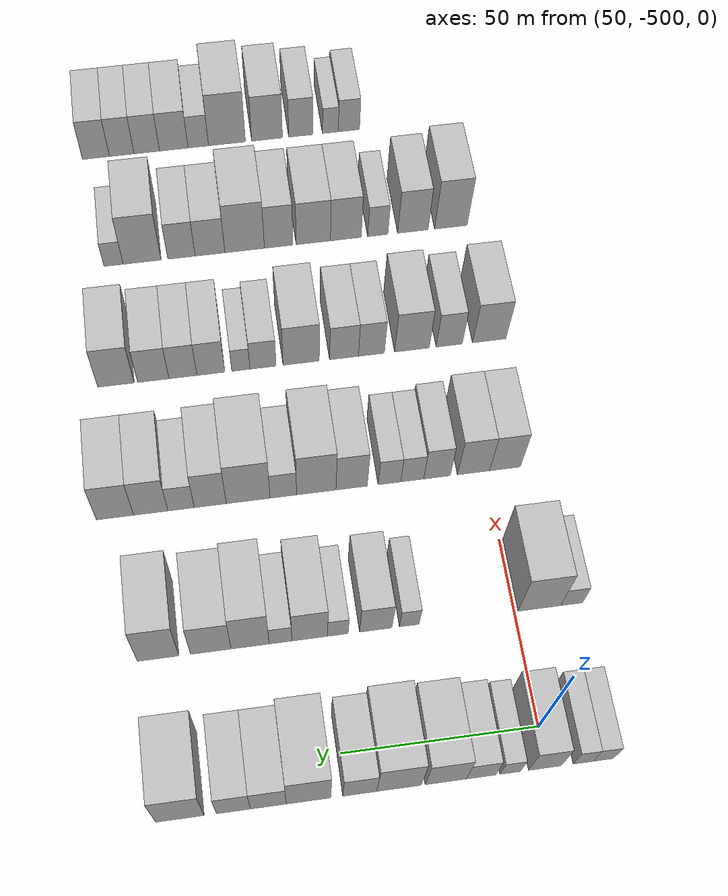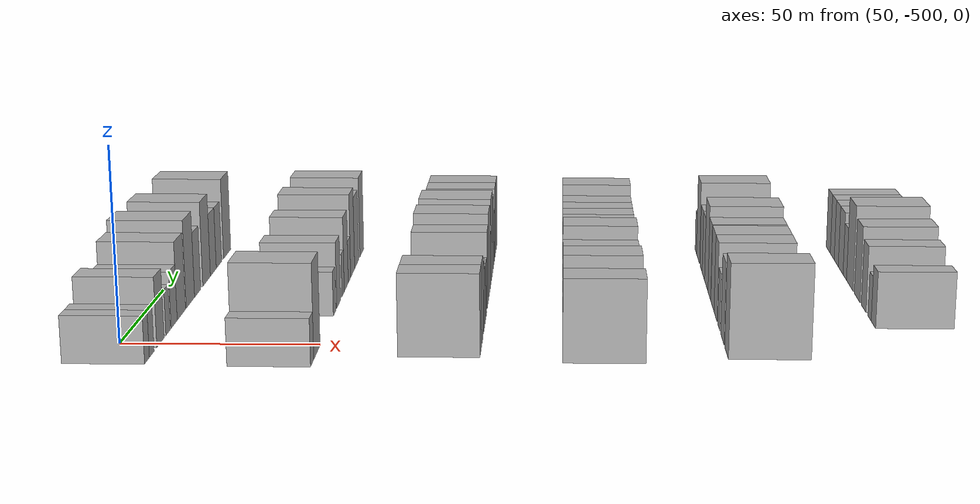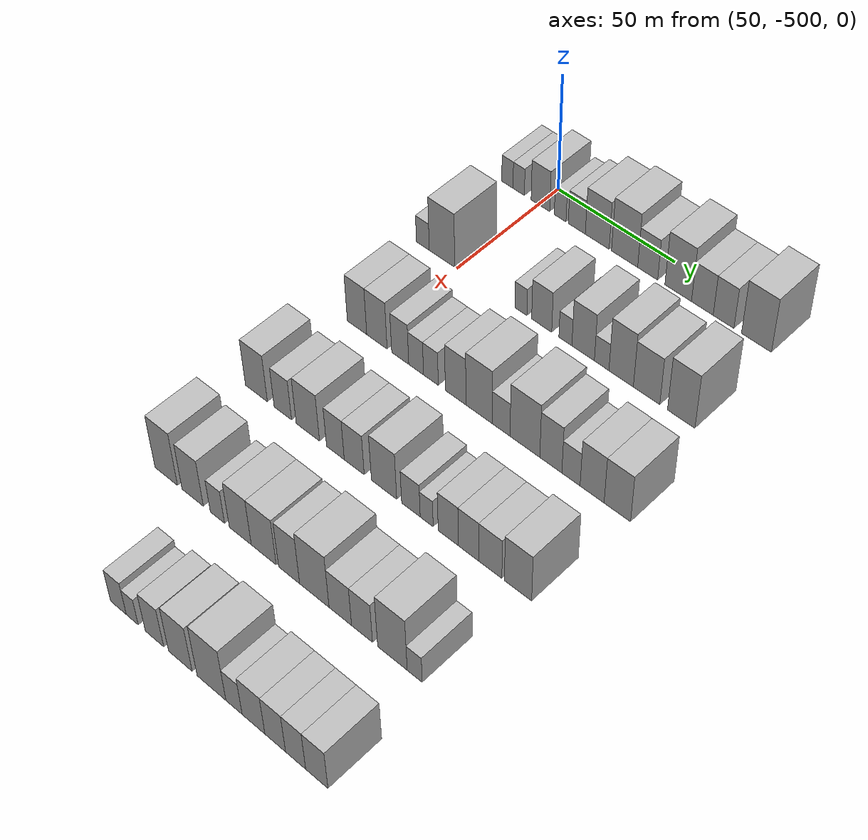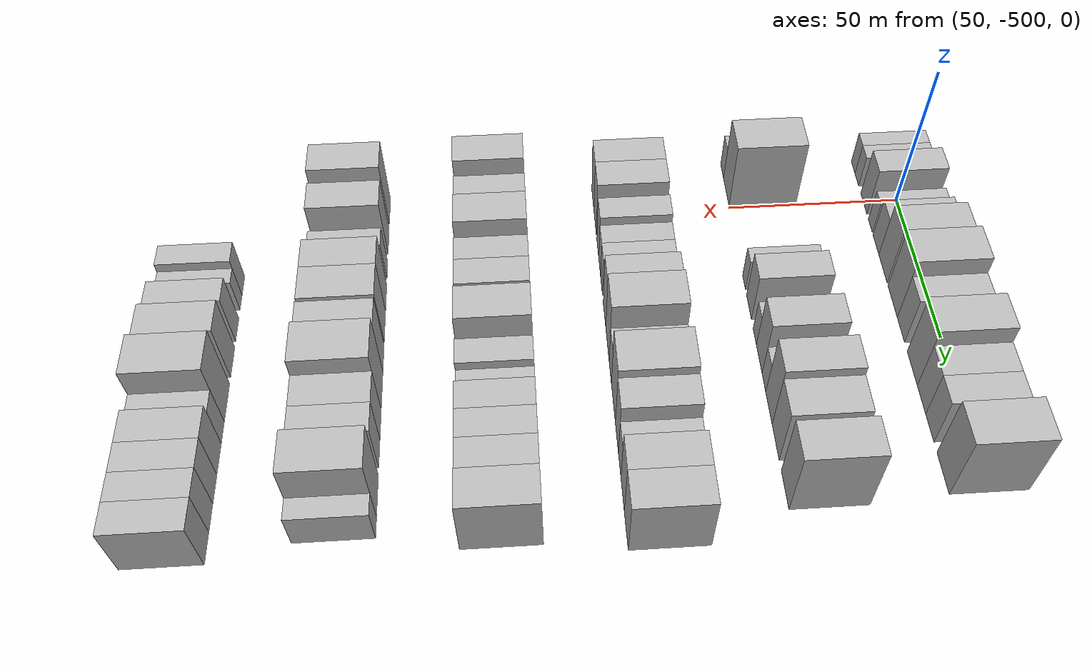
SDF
<sdf version="1.6">
 <world name="default">
  <model name="building_12">
   <static>1</static>
   <pose>50.0000 -514.1275 0 0.000000 0.000000 0.000000</pose>
   <link name="link">
    <pose>0 0 6.00 0 0 0</pose>
    <collision name="collision"><geometry><box><size>20.0000 5.0837 12.0000</size></box></geometry></collision>
    <visual name="visual">
     <cast_shadows>0</cast_shadows>
     <geometry><box><size>20.0000 5.0837 12.0000</size></box></geometry>
     <material>
      <script>
       <uri>model://HANNAS_wall/materials/scripts</uri>
       <uri>model://HANNAS_wall/materials/textures</uri>
       <name>vrc/HANNAS_wall</name>
      </script>
     </material>
    </visual>
   </link>
  </model>
  <model name="building_13">
   <static>1</static>
   <pose>50.0000 -509.0317 0 0.000000 0.000000 0.000000</pose>
   <link name="link">
    <pose>0 0 6.00 0 0 0</pose>
    <collision name="collision"><geometry><box><size>20.0000 5.1077 12.0000</size></box></geometry></collision>
    <visual name="visual">
     <cast_shadows>0</cast_shadows>
     <geometry><box><size>20.0000 5.1077 12.0000</size></box></geometry>
     <material>
      <script>
       <uri>model://HANNAS_wall/materials/scripts</uri>
       <uri>model://HANNAS_wall/materials/textures</uri>
       <name>vrc/HANNAS_wall</name>
      </script>
     </material>
    </visual>
   </link>
  </model>
  <model name="building_14">
   <static>1</static>
   <pose>50.0000 -499.3584 0 0.000000 0.000000 0.000000</pose>
   <link name="link">
    <pose>0 0 9.00 0 0 0</pose>
    <collision name="collision"><geometry><box><size>20.0000 8.2390 18.0000</size></box></geometry></collision>
    <visual name="visual">
     <cast_shadows>0</cast_shadows>
     <geometry><box><size>20.0000 8.2390 18.0000</size></box></geometry>
     <material>
      <script>
       <uri>model://HANNAS_wall/materials/scripts</uri>
       <uri>model://HANNAS_wall/materials/textures</uri>
       <name>vrc/HANNAS_wall</name>
      </script>
     </material>
    </visual>
   </link>
  </model>
  <model name="building_15">
   <static>1</static>
   <pose>50.0000 -490.6600 0 0.000000 0.000000 0.000000</pose>
   <link name="link">
    <pose>0 0 6.00 0 0 0</pose>
    <collision name="collision"><geometry><box><size>20.0000 5.1577 12.0000</size></box></geometry></collision>
    <visual name="visual">
     <cast_shadows>0</cast_shadows>
     <geometry><box><size>20.0000 5.1577 12.0000</size></box></geometry>
     <material>
      <script>
       <uri>model://HANNAS_wall/materials/scripts</uri>
       <uri>model://HANNAS_wall/materials/textures</uri>
       <name>vrc/HANNAS_wall</name>
      </script>
     </material>
    </visual>
   </link>
  </model>
  <model name="building_16">
   <static>1</static>
   <pose>50.0000 -483.3832 0 0.000000 0.000000 0.000000</pose>
   <link name="link">
    <pose>0 0 7.50 0 0 0</pose>
    <collision name="collision"><geometry><box><size>20.0000 7.3959 15.0000</size></box></geometry></collision>
    <visual name="visual">
     <cast_shadows>0</cast_shadows>
     <geometry><box><size>20.0000 7.3959 15.0000</size></box></geometry>
     <material>
      <script>
       <uri>model://HANNAS_wall/materials/scripts</uri>
       <uri>model://HANNAS_wall/materials/textures</uri>
       <name>vrc/HANNAS_wall</name>
      </script>
     </material>
    </visual>
   </link>
  </model>
  <model name="building_17">
   <static>1</static>
   <pose>50.0000 -474.5680 0 0.000000 0.000000 0.000000</pose>
   <link name="link">
    <pose>0 0 10.50 0 0 0</pose>
    <collision name="collision"><geometry><box><size>20.0000 10.2346 21.0000</size></box></geometry></collision>
    <visual name="visual">
     <cast_shadows>0</cast_shadows>
     <geometry><box><size>20.0000 10.2346 21.0000</size></box></geometry>
     <material>
      <script>
       <uri>model://HANNAS_wall/materials/scripts</uri>
       <uri>model://HANNAS_wall/materials/textures</uri>
       <name>vrc/HANNAS_wall</name>
      </script>
     </material>
    </visual>
   </link>
  </model>
  <model name="building_18">
   <static>1</static>
   <pose>50.0000 -462.9156 0 0.000000 0.000000 0.000000</pose>
   <link name="link">
    <pose>0 0 12.00 0 0 0</pose>
    <collision name="collision"><geometry><box><size>20.0000 11.0701 24.0000</size></box></geometry></collision>
    <visual name="visual">
     <cast_shadows>0</cast_shadows>
     <geometry><box><size>20.0000 11.0701 24.0000</size></box></geometry>
     <material>
      <script>
       <uri>model://HANNAS_wall/materials/scripts</uri>
       <uri>model://HANNAS_wall/materials/textures</uri>
       <name>vrc/HANNAS_wall</name>
      </script>
     </material>
    </visual>
   </link>
  </model>
  <model name="building_19">
   <static>1</static>
   <pose>50.0000 -453.2186 0 0.000000 0.000000 0.000000</pose>
   <link name="link">
    <pose>0 0 9.00 0 0 0</pose>
    <collision name="collision"><geometry><box><size>20.0000 8.3239 18.0000</size></box></geometry></collision>
    <visual name="visual">
     <cast_shadows>0</cast_shadows>
     <geometry><box><size>20.0000 8.3239 18.0000</size></box></geometry>
     <material>
      <script>
       <uri>model://HANNAS_wall/materials/scripts</uri>
       <uri>model://HANNAS_wall/materials/textures</uri>
       <name>vrc/HANNAS_wall</name>
      </script>
     </material>
    </visual>
   </link>
  </model>
  <model name="building_20">
   <static>1</static>
   <pose>50.0000 -440.6181 0 0.000000 0.000000 0.000000</pose>
   <link name="link">
    <pose>0 0 12.00 0 0 0</pose>
    <collision name="collision"><geometry><box><size>20.0000 10.8770 24.0000</size></box></geometry></collision>
    <visual name="visual">
     <cast_shadows>0</cast_shadows>
     <geometry><box><size>20.0000 10.8770 24.0000</size></box></geometry>
     <material>
      <script>
       <uri>model://HANNAS_wall/materials/scripts</uri>
       <uri>model://HANNAS_wall/materials/textures</uri>
       <name>vrc/HANNAS_wall</name>
      </script>
     </material>
    </visual>
   </link>
  </model>
  <model name="building_21">
   <static>1</static>
   <pose>50.0000 -430.7888 0 0.000000 0.000000 0.000000</pose>
   <link name="link">
    <pose>0 0 9.00 0 0 0</pose>
    <collision name="collision"><geometry><box><size>20.0000 8.7816 18.0000</size></box></geometry></collision>
    <visual name="visual">
     <cast_shadows>0</cast_shadows>
     <geometry><box><size>20.0000 8.7816 18.0000</size></box></geometry>
     <material>
      <script>
       <uri>model://HANNAS_wall/materials/scripts</uri>
       <uri>model://HANNAS_wall/materials/textures</uri>
       <name>vrc/HANNAS_wall</name>
      </script>
     </material>
    </visual>
   </link>
  </model>
  <model name="building_22">
   <static>1</static>
   <pose>50.0000 -422.2587 0 0.000000 0.000000 0.000000</pose>
   <link name="link">
    <pose>0 0 9.00 0 0 0</pose>
    <collision name="collision"><geometry><box><size>20.0000 8.2787 18.0000</size></box></geometry></collision>
    <visual name="visual">
     <cast_shadows>0</cast_shadows>
     <geometry><box><size>20.0000 8.2787 18.0000</size></box></geometry>
     <material>
      <script>
       <uri>model://HANNAS_wall/materials/scripts</uri>
       <uri>model://HANNAS_wall/materials/textures</uri>
       <name>vrc/HANNAS_wall</name>
      </script>
     </material>
    </visual>
   </link>
  </model>
  <model name="building_23">
   <static>1</static>
   <pose>50.0000 -409.2521 0 0.000000 0.000000 0.000000</pose>
   <link name="link">
    <pose>0 0 12.00 0 0 0</pose>
    <collision name="collision"><geometry><box><size>20.0000 11.7345 24.0000</size></box></geometry></collision>
    <visual name="visual">
     <cast_shadows>0</cast_shadows>
     <geometry><box><size>20.0000 11.7345 24.0000</size></box></geometry>
     <material>
      <script>
       <uri>model://HANNAS_wall/materials/scripts</uri>
       <uri>model://HANNAS_wall/materials/textures</uri>
       <name>vrc/HANNAS_wall</name>
      </script>
     </material>
    </visual>
   </link>
  </model>
  <model name="building_143">
   <static>1</static>
   <pose>90.0000 -515.1799 0 0.000000 0.000000 0.000000</pose>
   <link name="link">
    <pose>0 0 6.00 0 0 0</pose>
    <collision name="collision"><geometry><box><size>20.0000 5.7935 12.0000</size></box></geometry></collision>
    <visual name="visual">
     <cast_shadows>0</cast_shadows>
     <geometry><box><size>20.0000 5.7935 12.0000</size></box></geometry>
     <material>
      <script>
       <uri>model://HANNAS_wall/materials/scripts</uri>
       <uri>model://HANNAS_wall/materials/textures</uri>
       <name>vrc/HANNAS_wall</name>
      </script>
     </material>
    </visual>
   </link>
  </model>
  <model name="building_144">
   <static>1</static>
   <pose>90.0000 -506.5988 0 0.000000 0.000000 0.000000</pose>
   <link name="link">
    <pose>0 0 12.00 0 0 0</pose>
    <collision name="collision"><geometry><box><size>20.0000 11.3687 24.0000</size></box></geometry></collision>
    <visual name="visual">
     <cast_shadows>0</cast_shadows>
     <geometry><box><size>20.0000 11.3687 24.0000</size></box></geometry>
     <material>
      <script>
       <uri>model://HANNAS_wall/materials/scripts</uri>
       <uri>model://HANNAS_wall/materials/textures</uri>
       <name>vrc/HANNAS_wall</name>
      </script>
     </material>
    </visual>
   </link>
  </model>
  <model name="building_145">
   <static>1</static>
   <pose>90.0000 -472.2191 0 0.000000 0.000000 0.000000</pose>
   <link name="link">
    <pose>0 0 6.00 0 0 0</pose>
    <collision name="collision"><geometry><box><size>20.0000 5.1303 12.0000</size></box></geometry></collision>
    <visual name="visual">
     <cast_shadows>0</cast_shadows>
     <geometry><box><size>20.0000 5.1303 12.0000</size></box></geometry>
     <material>
      <script>
       <uri>model://HANNAS_wall/materials/scripts</uri>
       <uri>model://HANNAS_wall/materials/textures</uri>
       <name>vrc/HANNAS_wall</name>
      </script>
     </material>
    </visual>
   </link>
  </model>
  <model name="building_146">
   <static>1</static>
   <pose>90.0000 -463.4423 0 0.000000 0.000000 0.000000</pose>
   <link name="link">
    <pose>0 0 9.00 0 0 0</pose>
    <collision name="collision"><geometry><box><size>20.0000 8.4232 18.0000</size></box></geometry></collision>
    <visual name="visual">
     <cast_shadows>0</cast_shadows>
     <geometry><box><size>20.0000 8.4232 18.0000</size></box></geometry>
     <material>
      <script>
       <uri>model://HANNAS_wall/materials/scripts</uri>
       <uri>model://HANNAS_wall/materials/textures</uri>
       <name>vrc/HANNAS_wall</name>
      </script>
     </material>
    </visual>
   </link>
  </model>
  <model name="building_147">
   <static>1</static>
   <pose>90.0000 -453.5476 0 0.000000 0.000000 0.000000</pose>
   <link name="link">
    <pose>0 0 6.00 0 0 0</pose>
    <collision name="collision"><geometry><box><size>20.0000 5.3661 12.0000</size></box></geometry></collision>
    <visual name="visual">
     <cast_shadows>0</cast_shadows>
     <geometry><box><size>20.0000 5.3661 12.0000</size></box></geometry>
     <material>
      <script>
       <uri>model://HANNAS_wall/materials/scripts</uri>
       <uri>model://HANNAS_wall/materials/textures</uri>
       <name>vrc/HANNAS_wall</name>
      </script>
     </material>
    </visual>
   </link>
  </model>
  <model name="building_148">
   <static>1</static>
   <pose>90.0000 -446.2421 0 0.000000 0.000000 0.000000</pose>
   <link name="link">
    <pose>0 0 10.50 0 0 0</pose>
    <collision name="collision"><geometry><box><size>20.0000 9.2450 21.0000</size></box></geometry></collision>
    <visual name="visual">
     <cast_shadows>0</cast_shadows>
     <geometry><box><size>20.0000 9.2450 21.0000</size></box></geometry>
     <material>
      <script>
       <uri>model://HANNAS_wall/materials/scripts</uri>
       <uri>model://HANNAS_wall/materials/textures</uri>
       <name>vrc/HANNAS_wall</name>
      </script>
     </material>
    </visual>
   </link>
  </model>
  <model name="building_149">
   <static>1</static>
   <pose>90.0000 -438.6717 0 0.000000 0.000000 0.000000</pose>
   <link name="link">
    <pose>0 0 6.00 0 0 0</pose>
    <collision name="collision"><geometry><box><size>20.0000 5.8957 12.0000</size></box></geometry></collision>
    <visual name="visual">
     <cast_shadows>0</cast_shadows>
     <geometry><box><size>20.0000 5.8957 12.0000</size></box></geometry>
     <material>
      <script>
       <uri>model://HANNAS_wall/materials/scripts</uri>
       <uri>model://HANNAS_wall/materials/textures</uri>
       <name>vrc/HANNAS_wall</name>
      </script>
     </material>
    </visual>
   </link>
  </model>
  <model name="building_150">
   <static>1</static>
   <pose>90.0000 -430.8221 0 0.000000 0.000000 0.000000</pose>
   <link name="link">
    <pose>0 0 12.00 0 0 0</pose>
    <collision name="collision"><geometry><box><size>20.0000 9.8035 24.0000</size></box></geometry></collision>
    <visual name="visual">
     <cast_shadows>0</cast_shadows>
     <geometry><box><size>20.0000 9.8035 24.0000</size></box></geometry>
     <material>
      <script>
       <uri>model://HANNAS_wall/materials/scripts</uri>
       <uri>model://HANNAS_wall/materials/textures</uri>
       <name>vrc/HANNAS_wall</name>
      </script>
     </material>
    </visual>
   </link>
  </model>
  <model name="building_151">
   <static>1</static>
   <pose>90.0000 -420.6980 0 0.000000 0.000000 0.000000</pose>
   <link name="link">
    <pose>0 0 10.50 0 0 0</pose>
    <collision name="collision"><geometry><box><size>20.0000 10.4447 21.0000</size></box></geometry></collision>
    <visual name="visual">
     <cast_shadows>0</cast_shadows>
     <geometry><box><size>20.0000 10.4447 21.0000</size></box></geometry>
     <material>
      <script>
       <uri>model://HANNAS_wall/materials/scripts</uri>
       <uri>model://HANNAS_wall/materials/textures</uri>
       <name>vrc/HANNAS_wall</name>
      </script>
     </material>
    </visual>
   </link>
  </model>
  <model name="building_152">
   <static>1</static>
   <pose>90.0000 -407.1530 0 0.000000 0.000000 0.000000</pose>
   <link name="link">
    <pose>0 0 12.00 0 0 0</pose>
    <collision name="collision"><geometry><box><size>20.0000 10.6453 24.0000</size></box></geometry></collision>
    <visual name="visual">
     <cast_shadows>0</cast_shadows>
     <geometry><box><size>20.0000 10.6453 24.0000</size></box></geometry>
     <material>
      <script>
       <uri>model://HANNAS_wall/materials/scripts</uri>
       <uri>model://HANNAS_wall/materials/textures</uri>
       <name>vrc/HANNAS_wall</name>
      </script>
     </material>
    </visual>
   </link>
  </model>
  <model name="building_282">
   <static>1</static>
   <pose>130.0000 -505.5357 0 0.000000 0.000000 0.000000</pose>
   <link name="link">
    <pose>0 0 10.50 0 0 0</pose>
    <collision name="collision"><geometry><box><size>20.0000 8.5862 21.0000</size></box></geometry></collision>
    <visual name="visual">
     <cast_shadows>0</cast_shadows>
     <geometry><box><size>20.0000 8.5862 21.0000</size></box></geometry>
     <material>
      <script>
       <uri>model://HANNAS_wall/materials/scripts</uri>
       <uri>model://HANNAS_wall/materials/textures</uri>
       <name>vrc/HANNAS_wall</name>
      </script>
     </material>
    </visual>
   </link>
  </model>
  <model name="building_283">
   <static>1</static>
   <pose>130.0000 -496.7783 0 0.000000 0.000000 0.000000</pose>
   <link name="link">
    <pose>0 0 10.50 0 0 0</pose>
    <collision name="collision"><geometry><box><size>20.0000 8.9286 21.0000</size></box></geometry></collision>
    <visual name="visual">
     <cast_shadows>0</cast_shadows>
     <geometry><box><size>20.0000 8.9286 21.0000</size></box></geometry>
     <material>
      <script>
       <uri>model://HANNAS_wall/materials/scripts</uri>
       <uri>model://HANNAS_wall/materials/textures</uri>
       <name>vrc/HANNAS_wall</name>
      </script>
     </material>
    </visual>
   </link>
  </model>
  <model name="building_284">
   <static>1</static>
   <pose>130.0000 -486.6291 0 0.000000 0.000000 0.000000</pose>
   <link name="link">
    <pose>0 0 9.00 0 0 0</pose>
    <collision name="collision"><geometry><box><size>20.0000 7.3698 18.0000</size></box></geometry></collision>
    <visual name="visual">
     <cast_shadows>0</cast_shadows>
     <geometry><box><size>20.0000 7.3698 18.0000</size></box></geometry>
     <material>
      <script>
       <uri>model://HANNAS_wall/materials/scripts</uri>
       <uri>model://HANNAS_wall/materials/textures</uri>
       <name>vrc/HANNAS_wall</name>
      </script>
     </material>
    </visual>
   </link>
  </model>
  <model name="building_285">
   <static>1</static>
   <pose>130.0000 -479.7828 0 0.000000 0.000000 0.000000</pose>
   <link name="link">
    <pose>0 0 7.50 0 0 0</pose>
    <collision name="collision"><geometry><box><size>20.0000 6.3229 15.0000</size></box></geometry></collision>
    <visual name="visual">
     <cast_shadows>0</cast_shadows>
     <geometry><box><size>20.0000 6.3229 15.0000</size></box></geometry>
     <material>
      <script>
       <uri>model://HANNAS_wall/materials/scripts</uri>
       <uri>model://HANNAS_wall/materials/textures</uri>
       <name>vrc/HANNAS_wall</name>
      </script>
     </material>
    </visual>
   </link>
  </model>
  <model name="building_286">
   <static>1</static>
   <pose>130.0000 -473.4945 0 0.000000 0.000000 0.000000</pose>
   <link name="link">
    <pose>0 0 7.50 0 0 0</pose>
    <collision name="collision"><geometry><box><size>20.0000 6.2537 15.0000</size></box></geometry></collision>
    <visual name="visual">
     <cast_shadows>0</cast_shadows>
     <geometry><box><size>20.0000 6.2537 15.0000</size></box></geometry>
     <material>
      <script>
       <uri>model://HANNAS_wall/materials/scripts</uri>
       <uri>model://HANNAS_wall/materials/textures</uri>
       <name>vrc/HANNAS_wall</name>
      </script>
     </material>
    </visual>
   </link>
  </model>
  <model name="building_287">
   <static>1</static>
   <pose>130.0000 -463.0679 0 0.000000 0.000000 0.000000</pose>
   <link name="link">
    <pose>0 0 10.50 0 0 0</pose>
    <collision name="collision"><geometry><box><size>20.0000 8.5994 21.0000</size></box></geometry></collision>
    <visual name="visual">
     <cast_shadows>0</cast_shadows>
     <geometry><box><size>20.0000 8.5994 21.0000</size></box></geometry>
     <material>
      <script>
       <uri>model://HANNAS_wall/materials/scripts</uri>
       <uri>model://HANNAS_wall/materials/textures</uri>
       <name>vrc/HANNAS_wall</name>
      </script>
     </material>
    </visual>
   </link>
  </model>
  <model name="building_288">
   <static>1</static>
   <pose>130.0000 -453.3747 0 0.000000 0.000000 0.000000</pose>
   <link name="link">
    <pose>0 0 12.00 0 0 0</pose>
    <collision name="collision"><geometry><box><size>20.0000 10.7871 24.0000</size></box></geometry></collision>
    <visual name="visual">
     <cast_shadows>0</cast_shadows>
     <geometry><box><size>20.0000 10.7871 24.0000</size></box></geometry>
     <material>
      <script>
       <uri>model://HANNAS_wall/materials/scripts</uri>
       <uri>model://HANNAS_wall/materials/textures</uri>
       <name>vrc/HANNAS_wall</name>
      </script>
     </material>
    </visual>
   </link>
  </model>
  <model name="building_289">
   <static>1</static>
   <pose>130.0000 -444.3567 0 0.000000 0.000000 0.000000</pose>
   <link name="link">
    <pose>0 0 7.50 0 0 0</pose>
    <collision name="collision"><geometry><box><size>20.0000 7.2487 15.0000</size></box></geometry></collision>
    <visual name="visual">
     <cast_shadows>0</cast_shadows>
     <geometry><box><size>20.0000 7.2487 15.0000</size></box></geometry>
     <material>
      <script>
       <uri>model://HANNAS_wall/materials/scripts</uri>
       <uri>model://HANNAS_wall/materials/textures</uri>
       <name>vrc/HANNAS_wall</name>
      </script>
     </material>
    </visual>
   </link>
  </model>
  <model name="building_290">
   <static>1</static>
   <pose>130.0000 -434.7741 0 0.000000 0.000000 0.000000</pose>
   <link name="link">
    <pose>0 0 12.00 0 0 0</pose>
    <collision name="collision"><geometry><box><size>20.0000 11.9165 24.0000</size></box></geometry></collision>
    <visual name="visual">
     <cast_shadows>0</cast_shadows>
     <geometry><box><size>20.0000 11.9165 24.0000</size></box></geometry>
     <material>
      <script>
       <uri>model://HANNAS_wall/materials/scripts</uri>
       <uri>model://HANNAS_wall/materials/textures</uri>
       <name>vrc/HANNAS_wall</name>
      </script>
     </material>
    </visual>
   </link>
  </model>
  <model name="building_291">
   <static>1</static>
   <pose>130.0000 -424.4605 0 0.000000 0.000000 0.000000</pose>
   <link name="link">
    <pose>0 0 10.50 0 0 0</pose>
    <collision name="collision"><geometry><box><size>20.0000 8.7107 21.0000</size></box></geometry></collision>
    <visual name="visual">
     <cast_shadows>0</cast_shadows>
     <geometry><box><size>20.0000 8.7107 21.0000</size></box></geometry>
     <material>
      <script>
       <uri>model://HANNAS_wall/materials/scripts</uri>
       <uri>model://HANNAS_wall/materials/textures</uri>
       <name>vrc/HANNAS_wall</name>
      </script>
     </material>
    </visual>
   </link>
  </model>
  <model name="building_292">
   <static>1</static>
   <pose>130.0000 -416.5527 0 0.000000 0.000000 0.000000</pose>
   <link name="link">
    <pose>0 0 7.50 0 0 0</pose>
    <collision name="collision"><geometry><box><size>20.0000 7.1049 15.0000</size></box></geometry></collision>
    <visual name="visual">
     <cast_shadows>0</cast_shadows>
     <geometry><box><size>20.0000 7.1049 15.0000</size></box></geometry>
     <material>
      <script>
       <uri>model://HANNAS_wall/materials/scripts</uri>
       <uri>model://HANNAS_wall/materials/textures</uri>
       <name>vrc/HANNAS_wall</name>
      </script>
     </material>
    </visual>
   </link>
  </model>
  <model name="building_293">
   <static>1</static>
   <pose>130.0000 -408.3748 0 0.000000 0.000000 0.000000</pose>
   <link name="link">
    <pose>0 0 10.50 0 0 0</pose>
    <collision name="collision"><geometry><box><size>20.0000 9.2510 21.0000</size></box></geometry></collision>
    <visual name="visual">
     <cast_shadows>0</cast_shadows>
     <geometry><box><size>20.0000 9.2510 21.0000</size></box></geometry>
     <material>
      <script>
       <uri>model://HANNAS_wall/materials/scripts</uri>
       <uri>model://HANNAS_wall/materials/textures</uri>
       <name>vrc/HANNAS_wall</name>
      </script>
     </material>
    </visual>
   </link>
  </model>
  <model name="building_294">
   <static>1</static>
   <pose>130.0000 -398.7276 0 0.000000 0.000000 0.000000</pose>
   <link name="link">
    <pose>0 0 10.50 0 0 0</pose>
    <collision name="collision"><geometry><box><size>20.0000 10.0433 21.0000</size></box></geometry></collision>
    <visual name="visual">
     <cast_shadows>0</cast_shadows>
     <geometry><box><size>20.0000 10.0433 21.0000</size></box></geometry>
     <material>
      <script>
       <uri>model://HANNAS_wall/materials/scripts</uri>
       <uri>model://HANNAS_wall/materials/textures</uri>
       <name>vrc/HANNAS_wall</name>
      </script>
     </material>
    </visual>
   </link>
  </model>
  <model name="building_421">
   <static>1</static>
   <pose>170.0000 -509.0309 0 0.000000 0.000000 0.000000</pose>
   <link name="link">
    <pose>0 0 10.50 0 0 0</pose>
    <collision name="collision"><geometry><box><size>20.0000 9.7484 21.0000</size></box></geometry></collision>
    <visual name="visual">
     <cast_shadows>0</cast_shadows>
     <geometry><box><size>20.0000 9.7484 21.0000</size></box></geometry>
     <material>
      <script>
       <uri>model://HANNAS_wall/materials/scripts</uri>
       <uri>model://HANNAS_wall/materials/textures</uri>
       <name>vrc/HANNAS_wall</name>
      </script>
     </material>
    </visual>
   </link>
  </model>
  <model name="building_422">
   <static>1</static>
   <pose>170.0000 -497.3444 0 0.000000 0.000000 0.000000</pose>
   <link name="link">
    <pose>0 0 9.00 0 0 0</pose>
    <collision name="collision"><geometry><box><size>20.0000 7.6246 18.0000</size></box></geometry></collision>
    <visual name="visual">
     <cast_shadows>0</cast_shadows>
     <geometry><box><size>20.0000 7.6246 18.0000</size></box></geometry>
     <material>
      <script>
       <uri>model://HANNAS_wall/materials/scripts</uri>
       <uri>model://HANNAS_wall/materials/textures</uri>
       <name>vrc/HANNAS_wall</name>
      </script>
     </material>
    </visual>
   </link>
  </model>
  <model name="building_423">
   <static>1</static>
   <pose>170.0000 -486.5003 0 0.000000 0.000000 0.000000</pose>
   <link name="link">
    <pose>0 0 10.50 0 0 0</pose>
    <collision name="collision"><geometry><box><size>20.0000 10.0636 21.0000</size></box></geometry></collision>
    <visual name="visual">
     <cast_shadows>0</cast_shadows>
     <geometry><box><size>20.0000 10.0636 21.0000</size></box></geometry>
     <material>
      <script>
       <uri>model://HANNAS_wall/materials/scripts</uri>
       <uri>model://HANNAS_wall/materials/textures</uri>
       <name>vrc/HANNAS_wall</name>
      </script>
     </material>
    </visual>
   </link>
  </model>
  <model name="building_424">
   <static>1</static>
   <pose>170.0000 -474.7204 0 0.000000 0.000000 0.000000</pose>
   <link name="link">
    <pose>0 0 9.00 0 0 0</pose>
    <collision name="collision"><geometry><box><size>20.0000 7.4962 18.0000</size></box></geometry></collision>
    <visual name="visual">
     <cast_shadows>0</cast_shadows>
     <geometry><box><size>20.0000 7.4962 18.0000</size></box></geometry>
     <material>
      <script>
       <uri>model://HANNAS_wall/materials/scripts</uri>
       <uri>model://HANNAS_wall/materials/textures</uri>
       <name>vrc/HANNAS_wall</name>
      </script>
     </material>
    </visual>
   </link>
  </model>
  <model name="building_425">
   <static>1</static>
   <pose>170.0000 -466.7962 0 0.000000 0.000000 0.000000</pose>
   <link name="link">
    <pose>0 0 9.00 0 0 0</pose>
    <collision name="collision"><geometry><box><size>20.0000 8.3522 18.0000</size></box></geometry></collision>
    <visual name="visual">
     <cast_shadows>0</cast_shadows>
     <geometry><box><size>20.0000 8.3522 18.0000</size></box></geometry>
     <material>
      <script>
       <uri>model://HANNAS_wall/materials/scripts</uri>
       <uri>model://HANNAS_wall/materials/textures</uri>
       <name>vrc/HANNAS_wall</name>
      </script>
     </material>
    </visual>
   </link>
  </model>
  <model name="building_426">
   <static>1</static>
   <pose>170.0000 -454.4233 0 0.000000 0.000000 0.000000</pose>
   <link name="link">
    <pose>0 0 10.50 0 0 0</pose>
    <collision name="collision"><geometry><box><size>20.0000 10.3938 21.0000</size></box></geometry></collision>
    <visual name="visual">
     <cast_shadows>0</cast_shadows>
     <geometry><box><size>20.0000 10.3938 21.0000</size></box></geometry>
     <material>
      <script>
       <uri>model://HANNAS_wall/materials/scripts</uri>
       <uri>model://HANNAS_wall/materials/textures</uri>
       <name>vrc/HANNAS_wall</name>
      </script>
     </material>
    </visual>
   </link>
  </model>
  <model name="building_427">
   <static>1</static>
   <pose>170.0000 -443.4804 0 0.000000 0.000000 0.000000</pose>
   <link name="link">
    <pose>0 0 7.50 0 0 0</pose>
    <collision name="collision"><geometry><box><size>20.0000 7.4918 15.0000</size></box></geometry></collision>
    <visual name="visual">
     <cast_shadows>0</cast_shadows>
     <geometry><box><size>20.0000 7.4918 15.0000</size></box></geometry>
     <material>
      <script>
       <uri>model://HANNAS_wall/materials/scripts</uri>
       <uri>model://HANNAS_wall/materials/textures</uri>
       <name>vrc/HANNAS_wall</name>
      </script>
     </material>
    </visual>
   </link>
  </model>
  <model name="building_428">
   <static>1</static>
   <pose>170.0000 -437.1403 0 0.000000 0.000000 0.000000</pose>
   <link name="link">
    <pose>0 0 6.00 0 0 0</pose>
    <collision name="collision"><geometry><box><size>20.0000 5.1885 12.0000</size></box></geometry></collision>
    <visual name="visual">
     <cast_shadows>0</cast_shadows>
     <geometry><box><size>20.0000 5.1885 12.0000</size></box></geometry>
     <material>
      <script>
       <uri>model://HANNAS_wall/materials/scripts</uri>
       <uri>model://HANNAS_wall/materials/textures</uri>
       <name>vrc/HANNAS_wall</name>
      </script>
     </material>
    </visual>
   </link>
  </model>
  <model name="building_429">
   <static>1</static>
   <pose>170.0000 -428.5635 0 0.000000 0.000000 0.000000</pose>
   <link name="link">
    <pose>0 0 9.00 0 0 0</pose>
    <collision name="collision"><geometry><box><size>20.0000 7.9651 18.0000</size></box></geometry></collision>
    <visual name="visual">
     <cast_shadows>0</cast_shadows>
     <geometry><box><size>20.0000 7.9651 18.0000</size></box></geometry>
     <material>
      <script>
       <uri>model://HANNAS_wall/materials/scripts</uri>
       <uri>model://HANNAS_wall/materials/textures</uri>
       <name>vrc/HANNAS_wall</name>
      </script>
     </material>
    </visual>
   </link>
  </model>
  <model name="building_430">
   <static>1</static>
   <pose>170.0000 -420.6002 0 0.000000 0.000000 0.000000</pose>
   <link name="link">
    <pose>0 0 9.00 0 0 0</pose>
    <collision name="collision"><geometry><box><size>20.0000 7.9614 18.0000</size></box></geometry></collision>
    <visual name="visual">
     <cast_shadows>0</cast_shadows>
     <geometry><box><size>20.0000 7.9614 18.0000</size></box></geometry>
     <material>
      <script>
       <uri>model://HANNAS_wall/materials/scripts</uri>
       <uri>model://HANNAS_wall/materials/textures</uri>
       <name>vrc/HANNAS_wall</name>
      </script>
     </material>
    </visual>
   </link>
  </model>
  <model name="building_431">
   <static>1</static>
   <pose>170.0000 -412.1795 0 0.000000 0.000000 0.000000</pose>
   <link name="link">
    <pose>0 0 9.00 0 0 0</pose>
    <collision name="collision"><geometry><box><size>20.0000 8.8801 18.0000</size></box></geometry></collision>
    <visual name="visual">
     <cast_shadows>0</cast_shadows>
     <geometry><box><size>20.0000 8.8801 18.0000</size></box></geometry>
     <material>
      <script>
       <uri>model://HANNAS_wall/materials/scripts</uri>
       <uri>model://HANNAS_wall/materials/textures</uri>
       <name>vrc/HANNAS_wall</name>
      </script>
     </material>
    </visual>
   </link>
  </model>
  <model name="building_432">
   <static>1</static>
   <pose>170.0000 -401.6012 0 0.000000 0.000000 0.000000</pose>
   <link name="link">
    <pose>0 0 10.50 0 0 0</pose>
    <collision name="collision"><geometry><box><size>20.0000 10.2764 21.0000</size></box></geometry></collision>
    <visual name="visual">
     <cast_shadows>0</cast_shadows>
     <geometry><box><size>20.0000 10.2764 21.0000</size></box></geometry>
     <material>
      <script>
       <uri>model://HANNAS_wall/materials/scripts</uri>
       <uri>model://HANNAS_wall/materials/textures</uri>
       <name>vrc/HANNAS_wall</name>
      </script>
     </material>
    </visual>
   </link>
  </model>
  <model name="building_557">
   <static>1</static>
   <pose>210.0000 -505.1703 0 0.000000 0.000000 0.000000</pose>
   <link name="link">
    <pose>0 0 12.00 0 0 0</pose>
    <collision name="collision"><geometry><box><size>20.0000 9.9472 24.0000</size></box></geometry></collision>
    <visual name="visual">
     <cast_shadows>0</cast_shadows>
     <geometry><box><size>20.0000 9.9472 24.0000</size></box></geometry>
     <material>
      <script>
       <uri>model://HANNAS_wall/materials/scripts</uri>
       <uri>model://HANNAS_wall/materials/textures</uri>
       <name>vrc/HANNAS_wall</name>
      </script>
     </material>
    </visual>
   </link>
  </model>
  <model name="building_558">
   <static>1</static>
   <pose>210.0000 -493.5555 0 0.000000 0.000000 0.000000</pose>
   <link name="link">
    <pose>0 0 10.50 0 0 0</pose>
    <collision name="collision"><geometry><box><size>20.0000 9.2826 21.0000</size></box></geometry></collision>
    <visual name="visual">
     <cast_shadows>0</cast_shadows>
     <geometry><box><size>20.0000 9.2826 21.0000</size></box></geometry>
     <material>
      <script>
       <uri>model://HANNAS_wall/materials/scripts</uri>
       <uri>model://HANNAS_wall/materials/textures</uri>
       <name>vrc/HANNAS_wall</name>
      </script>
     </material>
    </visual>
   </link>
  </model>
  <model name="building_559">
   <static>1</static>
   <pose>210.0000 -482.8533 0 0.000000 0.000000 0.000000</pose>
   <link name="link">
    <pose>0 0 7.50 0 0 0</pose>
    <collision name="collision"><geometry><box><size>20.0000 6.1217 15.0000</size></box></geometry></collision>
    <visual name="visual">
     <cast_shadows>0</cast_shadows>
     <geometry><box><size>20.0000 6.1217 15.0000</size></box></geometry>
     <material>
      <script>
       <uri>model://HANNAS_wall/materials/scripts</uri>
       <uri>model://HANNAS_wall/materials/textures</uri>
       <name>vrc/HANNAS_wall</name>
      </script>
     </material>
    </visual>
   </link>
  </model>
  <model name="building_560">
   <static>1</static>
   <pose>210.0000 -473.1488 0 0.000000 0.000000 0.000000</pose>
   <link name="link">
    <pose>0 0 10.50 0 0 0</pose>
    <collision name="collision"><geometry><box><size>20.0000 9.2872 21.0000</size></box></geometry></collision>
    <visual name="visual">
     <cast_shadows>0</cast_shadows>
     <geometry><box><size>20.0000 9.2872 21.0000</size></box></geometry>
     <material>
      <script>
       <uri>model://HANNAS_wall/materials/scripts</uri>
       <uri>model://HANNAS_wall/materials/textures</uri>
       <name>vrc/HANNAS_wall</name>
      </script>
     </material>
    </visual>
   </link>
  </model>
  <model name="building_561">
   <static>1</static>
   <pose>210.0000 -463.3242 0 0.000000 0.000000 0.000000</pose>
   <link name="link">
    <pose>0 0 10.50 0 0 0</pose>
    <collision name="collision"><geometry><box><size>20.0000 10.3621 21.0000</size></box></geometry></collision>
    <visual name="visual">
     <cast_shadows>0</cast_shadows>
     <geometry><box><size>20.0000 10.3621 21.0000</size></box></geometry>
     <material>
      <script>
       <uri>model://HANNAS_wall/materials/scripts</uri>
       <uri>model://HANNAS_wall/materials/textures</uri>
       <name>vrc/HANNAS_wall</name>
      </script>
     </material>
    </visual>
   </link>
  </model>
  <model name="building_562">
   <static>1</static>
   <pose>210.0000 -452.8515 0 0.000000 0.000000 0.000000</pose>
   <link name="link">
    <pose>0 0 10.50 0 0 0</pose>
    <collision name="collision"><geometry><box><size>20.0000 8.5832 21.0000</size></box></geometry></collision>
    <visual name="visual">
     <cast_shadows>0</cast_shadows>
     <geometry><box><size>20.0000 8.5832 21.0000</size></box></geometry>
     <material>
      <script>
       <uri>model://HANNAS_wall/materials/scripts</uri>
       <uri>model://HANNAS_wall/materials/textures</uri>
       <name>vrc/HANNAS_wall</name>
      </script>
     </material>
    </visual>
   </link>
  </model>
  <model name="building_563">
   <static>1</static>
   <pose>210.0000 -442.6322 0 0.000000 0.000000 0.000000</pose>
   <link name="link">
    <pose>0 0 12.00 0 0 0</pose>
    <collision name="collision"><geometry><box><size>20.0000 11.8555 24.0000</size></box></geometry></collision>
    <visual name="visual">
     <cast_shadows>0</cast_shadows>
     <geometry><box><size>20.0000 11.8555 24.0000</size></box></geometry>
     <material>
      <script>
       <uri>model://HANNAS_wall/materials/scripts</uri>
       <uri>model://HANNAS_wall/materials/textures</uri>
       <name>vrc/HANNAS_wall</name>
      </script>
     </material>
    </visual>
   </link>
  </model>
  <model name="building_564">
   <static>1</static>
   <pose>210.0000 -432.2557 0 0.000000 0.000000 0.000000</pose>
   <link name="link">
    <pose>0 0 9.00 0 0 0</pose>
    <collision name="collision"><geometry><box><size>20.0000 8.8976 18.0000</size></box></geometry></collision>
    <visual name="visual">
     <cast_shadows>0</cast_shadows>
     <geometry><box><size>20.0000 8.8976 18.0000</size></box></geometry>
     <material>
      <script>
       <uri>model://HANNAS_wall/materials/scripts</uri>
       <uri>model://HANNAS_wall/materials/textures</uri>
       <name>vrc/HANNAS_wall</name>
      </script>
     </material>
    </visual>
   </link>
  </model>
  <model name="building_565">
   <static>1</static>
   <pose>210.0000 -423.7216 0 0.000000 0.000000 0.000000</pose>
   <link name="link">
    <pose>0 0 9.00 0 0 0</pose>
    <collision name="collision"><geometry><box><size>20.0000 8.1706 18.0000</size></box></geometry></collision>
    <visual name="visual">
     <cast_shadows>0</cast_shadows>
     <geometry><box><size>20.0000 8.1706 18.0000</size></box></geometry>
     <material>
      <script>
       <uri>model://HANNAS_wall/materials/scripts</uri>
       <uri>model://HANNAS_wall/materials/textures</uri>
       <name>vrc/HANNAS_wall</name>
      </script>
     </material>
    </visual>
   </link>
  </model>
  <model name="building_566">
   <static>1</static>
   <pose>210.0000 -411.9865 0 0.000000 0.000000 0.000000</pose>
   <link name="link">
    <pose>0 0 12.00 0 0 0</pose>
    <collision name="collision"><geometry><box><size>20.0000 11.2995 24.0000</size></box></geometry></collision>
    <visual name="visual">
     <cast_shadows>0</cast_shadows>
     <geometry><box><size>20.0000 11.2995 24.0000</size></box></geometry>
     <material>
      <script>
       <uri>model://HANNAS_wall/materials/scripts</uri>
       <uri>model://HANNAS_wall/materials/textures</uri>
       <name>vrc/HANNAS_wall</name>
      </script>
     </material>
    </visual>
   </link>
  </model>
  <model name="building_567">
   <static>1</static>
   <pose>210.0000 -403.4936 0 0.000000 0.000000 0.000000</pose>
   <link name="link">
    <pose>0 0 6.00 0 0 0</pose>
    <collision name="collision"><geometry><box><size>20.0000 5.6864 12.0000</size></box></geometry></collision>
    <visual name="visual">
     <cast_shadows>0</cast_shadows>
     <geometry><box><size>20.0000 5.6864 12.0000</size></box></geometry>
     <material>
      <script>
       <uri>model://HANNAS_wall/materials/scripts</uri>
       <uri>model://HANNAS_wall/materials/textures</uri>
       <name>vrc/HANNAS_wall</name>
      </script>
     </material>
    </visual>
   </link>
  </model>
  <model name="building_704">
   <static>1</static>
   <pose>250.0000 -479.9669 0 0.000000 0.000000 0.000000</pose>
   <link name="link">
    <pose>0 0 7.50 0 0 0</pose>
    <collision name="collision"><geometry><box><size>20.0000 6.7007 15.0000</size></box></geometry></collision>
    <visual name="visual">
     <cast_shadows>0</cast_shadows>
     <geometry><box><size>20.0000 6.7007 15.0000</size></box></geometry>
     <material>
      <script>
       <uri>model://HANNAS_wall/materials/scripts</uri>
       <uri>model://HANNAS_wall/materials/textures</uri>
       <name>vrc/HANNAS_wall</name>
      </script>
     </material>
    </visual>
   </link>
  </model>
  <model name="building_705">
   <static>1</static>
   <pose>250.0000 -474.1023 0 0.000000 0.000000 0.000000</pose>
   <link name="link">
    <pose>0 0 6.00 0 0 0</pose>
    <collision name="collision"><geometry><box><size>20.0000 5.0285 12.0000</size></box></geometry></collision>
    <visual name="visual">
     <cast_shadows>0</cast_shadows>
     <geometry><box><size>20.0000 5.0285 12.0000</size></box></geometry>
     <material>
      <script>
       <uri>model://HANNAS_wall/materials/scripts</uri>
       <uri>model://HANNAS_wall/materials/textures</uri>
       <name>vrc/HANNAS_wall</name>
      </script>
     </material>
    </visual>
   </link>
  </model>
  <model name="building_706">
   <static>1</static>
   <pose>250.0000 -464.7578 0 0.000000 0.000000 0.000000</pose>
   <link name="link">
    <pose>0 0 9.00 0 0 0</pose>
    <collision name="collision"><geometry><box><size>20.0000 7.6605 18.0000</size></box></geometry></collision>
    <visual name="visual">
     <cast_shadows>0</cast_shadows>
     <geometry><box><size>20.0000 7.6605 18.0000</size></box></geometry>
     <material>
      <script>
       <uri>model://HANNAS_wall/materials/scripts</uri>
       <uri>model://HANNAS_wall/materials/textures</uri>
       <name>vrc/HANNAS_wall</name>
      </script>
     </material>
    </visual>
   </link>
  </model>
  <model name="building_707">
   <static>1</static>
   <pose>250.0000 -454.0921 0 0.000000 0.000000 0.000000</pose>
   <link name="link">
    <pose>0 0 10.50 0 0 0</pose>
    <collision name="collision"><geometry><box><size>20.0000 9.6708 21.0000</size></box></geometry></collision>
    <visual name="visual">
     <cast_shadows>0</cast_shadows>
     <geometry><box><size>20.0000 9.6708 21.0000</size></box></geometry>
     <material>
      <script>
       <uri>model://HANNAS_wall/materials/scripts</uri>
       <uri>model://HANNAS_wall/materials/textures</uri>
       <name>vrc/HANNAS_wall</name>
      </script>
     </material>
    </visual>
   </link>
  </model>
  <model name="building_708">
   <static>1</static>
   <pose>250.0000 -441.4724 0 0.000000 0.000000 0.000000</pose>
   <link name="link">
    <pose>0 0 12.00 0 0 0</pose>
    <collision name="collision"><geometry><box><size>20.0000 11.5687 24.0000</size></box></geometry></collision>
    <visual name="visual">
     <cast_shadows>0</cast_shadows>
     <geometry><box><size>20.0000 11.5687 24.0000</size></box></geometry>
     <material>
      <script>
       <uri>model://HANNAS_wall/materials/scripts</uri>
       <uri>model://HANNAS_wall/materials/textures</uri>
       <name>vrc/HANNAS_wall</name>
      </script>
     </material>
    </visual>
   </link>
  </model>
  <model name="building_709">
   <static>1</static>
   <pose>250.0000 -432.4826 0 0.000000 0.000000 0.000000</pose>
   <link name="link">
    <pose>0 0 7.50 0 0 0</pose>
    <collision name="collision"><geometry><box><size>20.0000 6.4109 15.0000</size></box></geometry></collision>
    <visual name="visual">
     <cast_shadows>0</cast_shadows>
     <geometry><box><size>20.0000 6.4109 15.0000</size></box></geometry>
     <material>
      <script>
       <uri>model://HANNAS_wall/materials/scripts</uri>
       <uri>model://HANNAS_wall/materials/textures</uri>
       <name>vrc/HANNAS_wall</name>
      </script>
     </material>
    </visual>
   </link>
  </model>
  <model name="building_710">
   <static>1</static>
   <pose>250.0000 -424.8323 0 0.000000 0.000000 0.000000</pose>
   <link name="link">
    <pose>0 0 9.00 0 0 0</pose>
    <collision name="collision"><geometry><box><size>20.0000 8.8897 18.0000</size></box></geometry></collision>
    <visual name="visual">
     <cast_shadows>0</cast_shadows>
     <geometry><box><size>20.0000 8.8897 18.0000</size></box></geometry>
     <material>
      <script>
       <uri>model://HANNAS_wall/materials/scripts</uri>
       <uri>model://HANNAS_wall/materials/textures</uri>
       <name>vrc/HANNAS_wall</name>
      </script>
     </material>
    </visual>
   </link>
  </model>
  <model name="building_711">
   <static>1</static>
   <pose>250.0000 -416.4176 0 0.000000 0.000000 0.000000</pose>
   <link name="link">
    <pose>0 0 9.00 0 0 0</pose>
    <collision name="collision"><geometry><box><size>20.0000 7.9398 18.0000</size></box></geometry></collision>
    <visual name="visual">
     <cast_shadows>0</cast_shadows>
     <geometry><box><size>20.0000 7.9398 18.0000</size></box></geometry>
     <material>
      <script>
       <uri>model://HANNAS_wall/materials/scripts</uri>
       <uri>model://HANNAS_wall/materials/textures</uri>
       <name>vrc/HANNAS_wall</name>
      </script>
     </material>
    </visual>
   </link>
  </model>
  <model name="building_712">
   <static>1</static>
   <pose>250.0000 -408.6231 0 0.000000 0.000000 0.000000</pose>
   <link name="link">
    <pose>0 0 9.00 0 0 0</pose>
    <collision name="collision"><geometry><box><size>20.0000 7.6492 18.0000</size></box></geometry></collision>
    <visual name="visual">
     <cast_shadows>0</cast_shadows>
     <geometry><box><size>20.0000 7.6492 18.0000</size></box></geometry>
     <material>
      <script>
       <uri>model://HANNAS_wall/materials/scripts</uri>
       <uri>model://HANNAS_wall/materials/textures</uri>
       <name>vrc/HANNAS_wall</name>
      </script>
     </material>
    </visual>
   </link>
  </model>
  <model name="building_713">
   <static>1</static>
   <pose>250.0000 -400.6230 0 0.000000 0.000000 0.000000</pose>
   <link name="link">
    <pose>0 0 9.00 0 0 0</pose>
    <collision name="collision"><geometry><box><size>20.0000 8.3508 18.0000</size></box></geometry></collision>
    <visual name="visual">
     <cast_shadows>0</cast_shadows>
     <geometry><box><size>20.0000 8.3508 18.0000</size></box></geometry>
     <material>
      <script>
       <uri>model://HANNAS_wall/materials/scripts</uri>
       <uri>model://HANNAS_wall/materials/textures</uri>
       <name>vrc/HANNAS_wall</name>
      </script>
     </material>
    </visual>
   </link>
  </model>
 </world>
</sdf>
